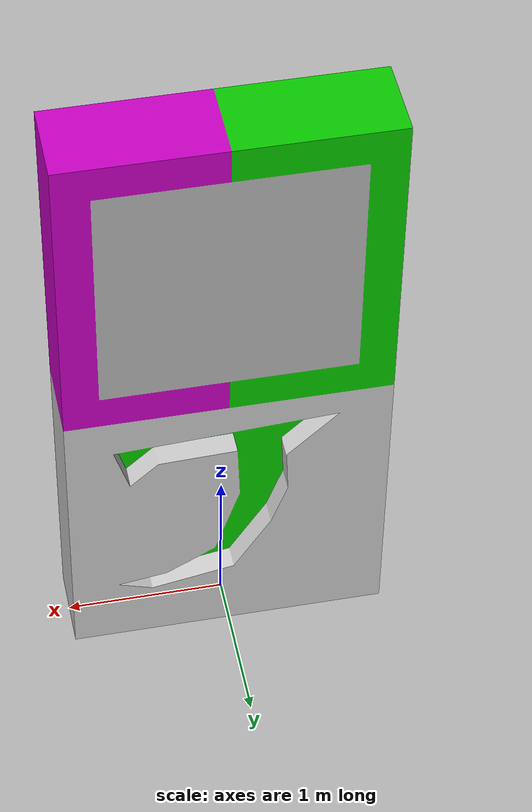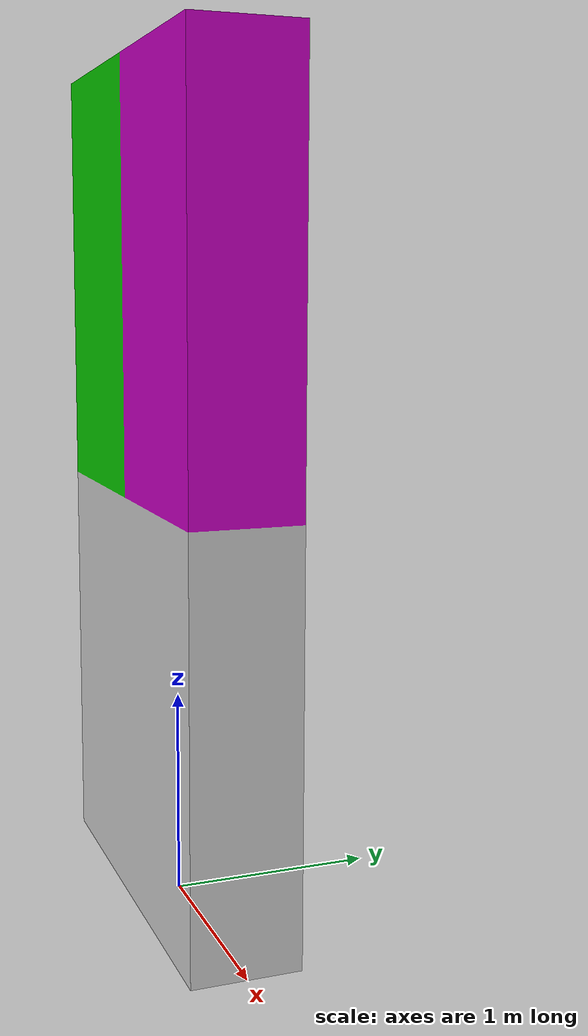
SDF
<?xml version="1.0" ?>
<sdf version="1.6">
    <model name='qr_stand2'>
      <pose frame=''>0 0 0 0 -0 1.57</pose>
      <static>1</static>
      <link name='body'>
        <inertial>
          <mass>1</mass>
          <inertia>
            <ixx>0.166667</ixx>
            <ixy>0</ixy>
            <ixz>0</ixz>
            <iyy>0.166667</iyy>
            <iyz>0</iyz>
            <izz>0.166667</izz>
          </inertia>
        </inertial>
        <collision name='collision'>
          <geometry>
            <box>
              <size>1 1 1</size>
            </box>
          </geometry>
          <max_contacts>10</max_contacts>
          <surface>
            <contact>
              <ode/>
            </contact>
            <bounce/>
            <friction>
              <torsional>
                <ode/>
              </torsional>
              <ode/>
            </friction>
          </surface>
        </collision>
        <visual name='visual'>
          <geometry>
            <mesh>
              <uri>model://qr_stand2/meshes/qr2.dae</uri>
            </mesh>
          </geometry>
        </visual>
        <self_collide>0</self_collide>
        <enable_wind>0</enable_wind>
        <kinematic>0</kinematic>
        <cast_shadows>false</cast_shadows>
      </link>
    </model>
</sdf>
